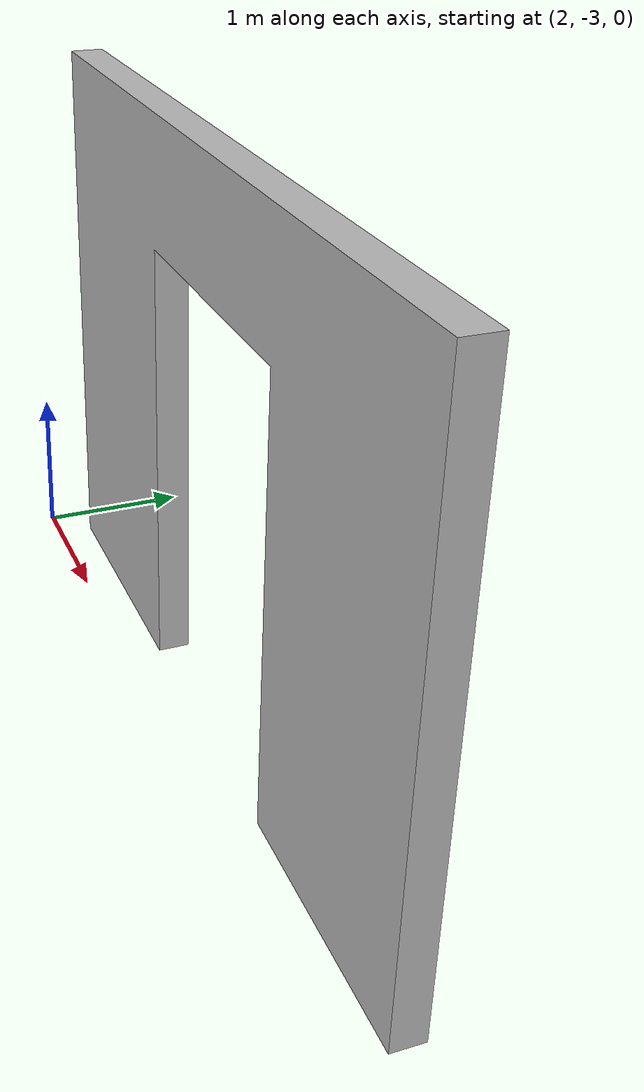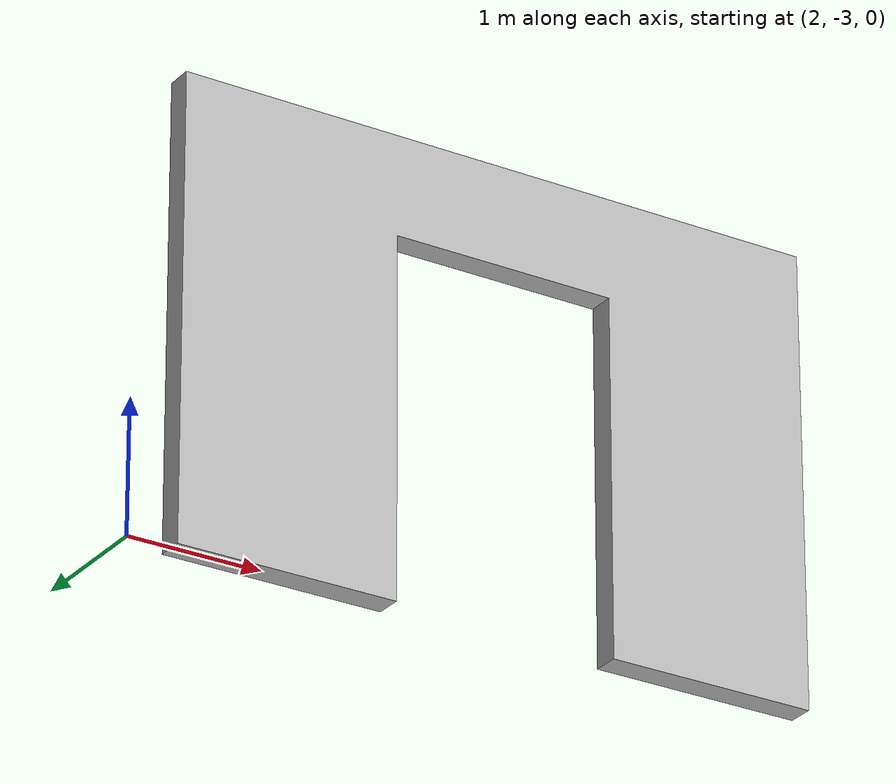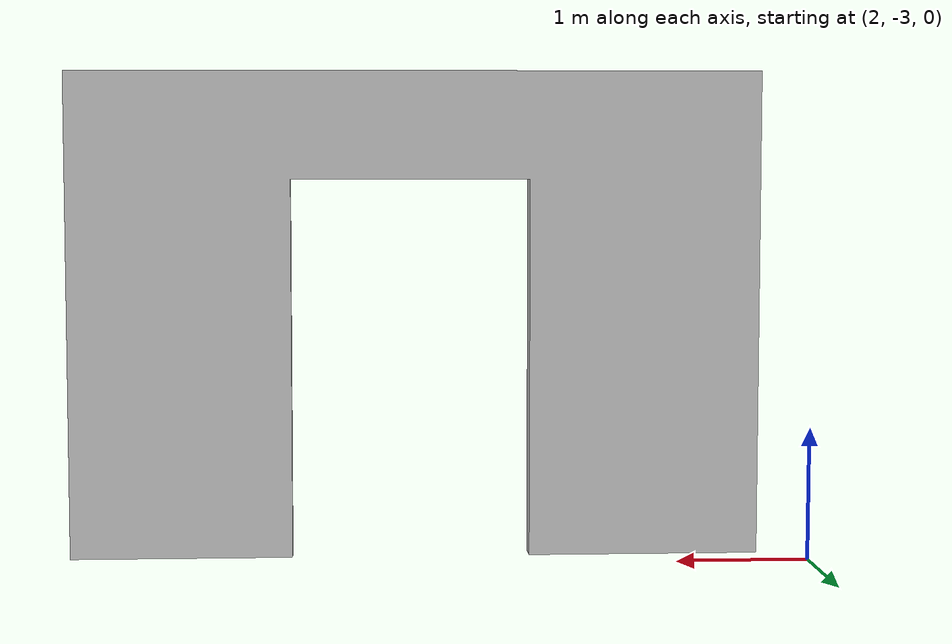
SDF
<?xml version="1.0"?>
<sdf version="1.5">
    <model name="house_wall_10">
        <static>true</static>
        <link name="link">
            <collision name="collision_wall">
                <pose>0 0 0.05 0 0 0</pose>
                <geometry>
                    <mesh>
                        <uri>model://house_scene_2_wall_10/meshes/scene_2_wall_10.dae</uri>
                    </mesh>
                </geometry>
            </collision>
            <visual name="visual_walls">
              <pose>0 0 0.05 0 0 0</pose>
              <geometry>
              <mesh>
                 <uri>model://house_scene_2_wall_10/meshes/scene_2_wall_10.dae</uri>
              </mesh>
              </geometry>
              <material>
                  <script>
                      <uri>model://house_scene_2_wall_10/materials/scripts</uri>
                      <uri>model://house_scene_2_wall_10/materials/textures</uri>
                      <name>houseMat/Diffuse</name>
                  </script>
              </material>
             </visual>

        </link>
    </model>
</sdf>
